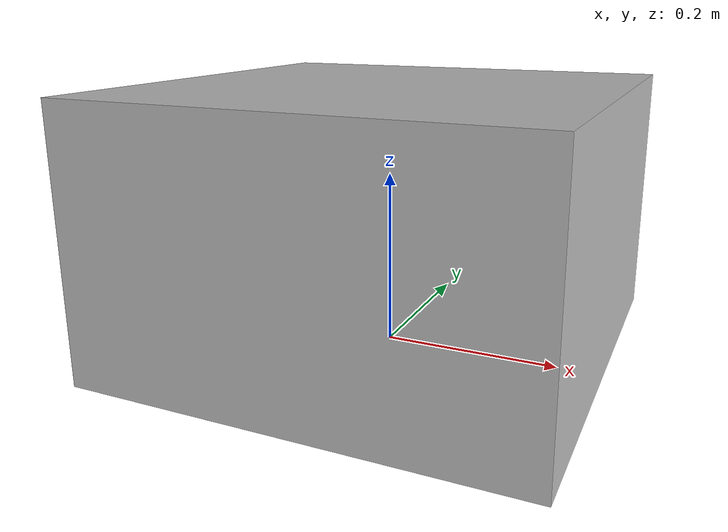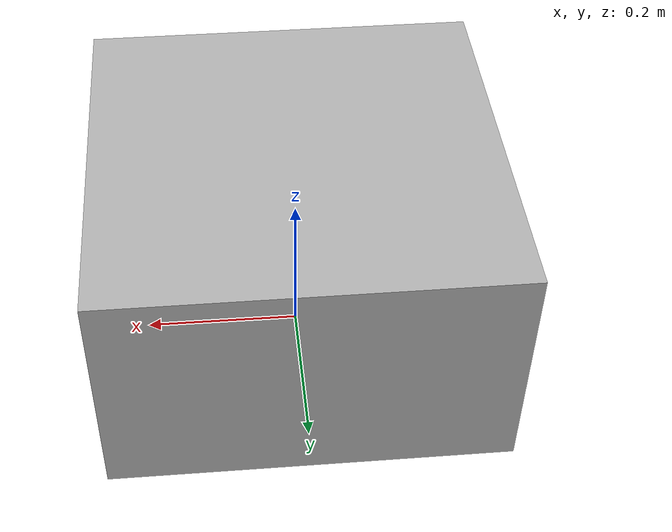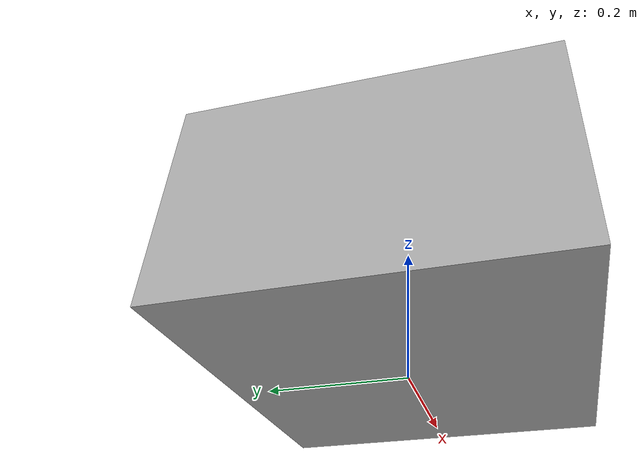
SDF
<?xml version="1.0" ?>
<sdf version="1.6">
  <model name="cardboard_box">
    <pose>0 0 0.15 0 0 0</pose>
    <link name="link">
      <inertial>
        <mass>2</mass>
        <inertia>
          <ixx>0.041666667</ixx>
          <ixy>0</ixy>
          <ixz>0</ixz>
          <iyy>0.056666667</iyy>
          <iyz>0</iyz>
          <izz>0.068333333</izz>
        </inertia>
      </inertial>

      <!-- Updated collision size -->
      <collision name="collision">
        <geometry>
          <box>
            <size>0.5 0.5 0.3</size>  <!-- Width updated to 0.5 -->
          </box>
        </geometry>
        <surface>
          <friction>
            <ode>
              <mu>1.0</mu>
              <mu2>1.0</mu2>
            </ode>
          </friction>
          <contact>
            <ode>
              <kp>10000000.0</kp>
              <kd>1.0</kd>
              <min_depth>0.001</min_depth>
              <max_vel>0.1</max_vel>
            </ode>
          </contact>
        </surface>
      </collision>

      <!-- Updated visual with new scale -->
      <visual name="visual">
        <pose>0 0 -0.15 0 0 0</pose>
        <geometry>
          <mesh>
            <uri>model://cardboard_box/meshes/cardboard_box.dae</uri>
            <scale>1.25931896 1.25 0.755591376</scale>  <!-- Updated Y-axis scale -->
          </mesh>
        </geometry>
      </visual>
    </link>
  </model>
</sdf>
